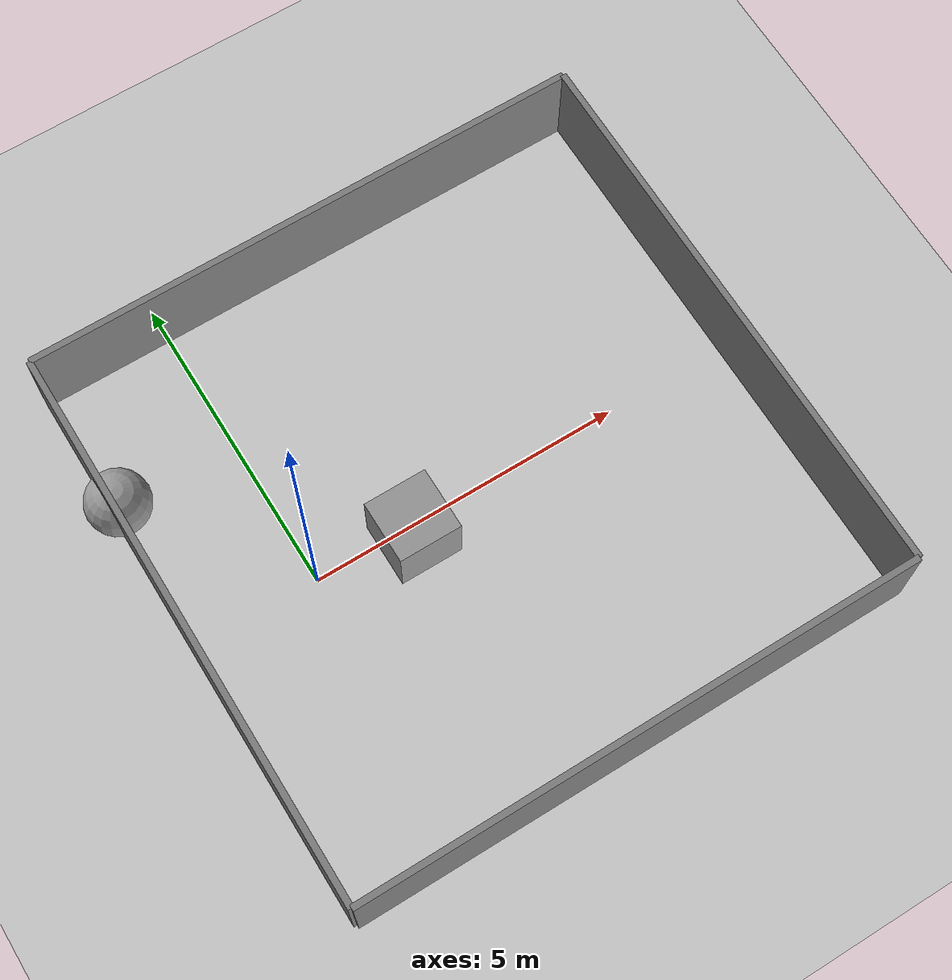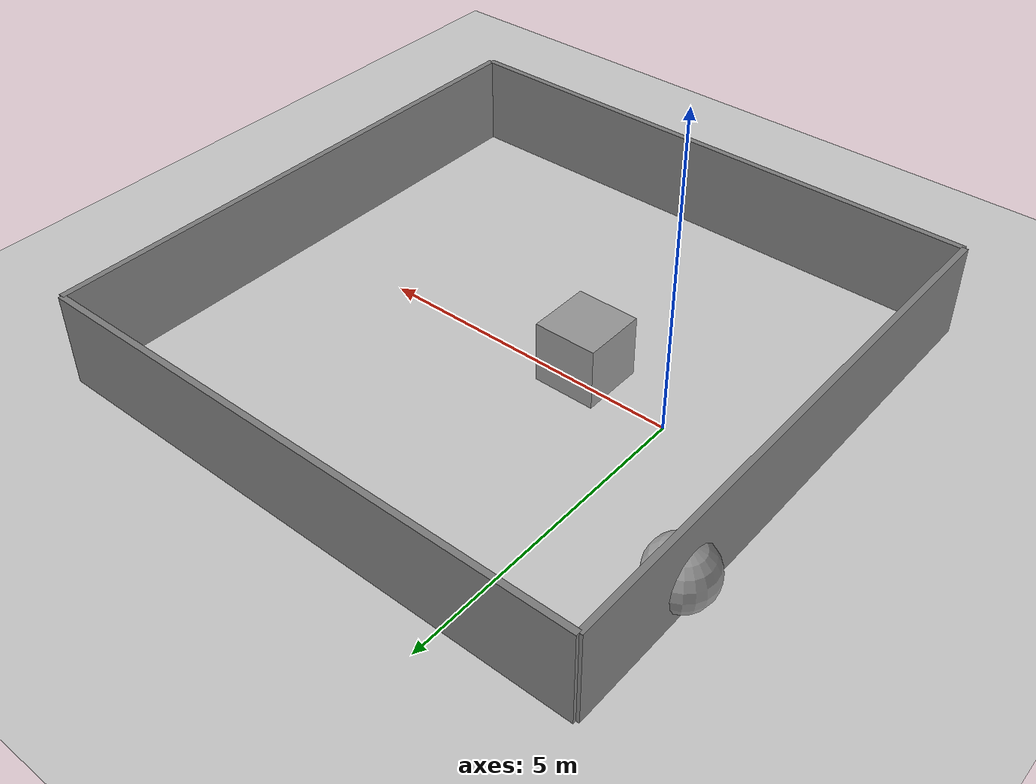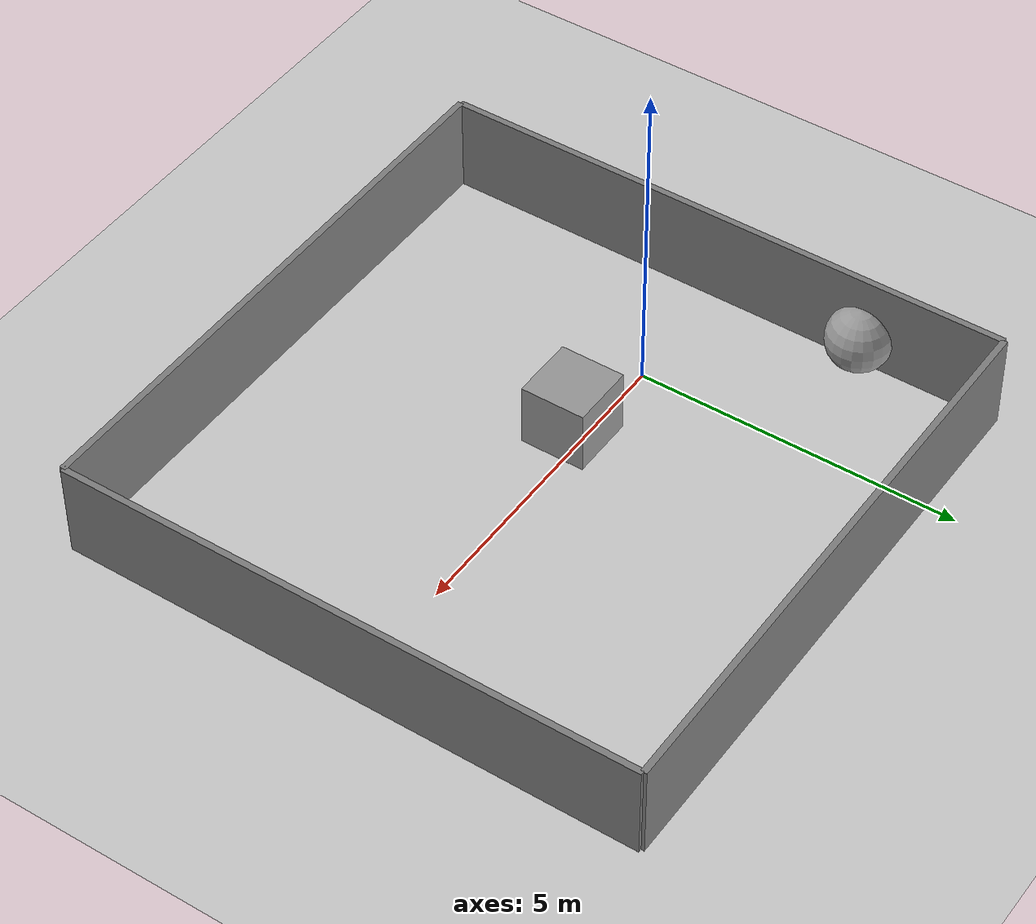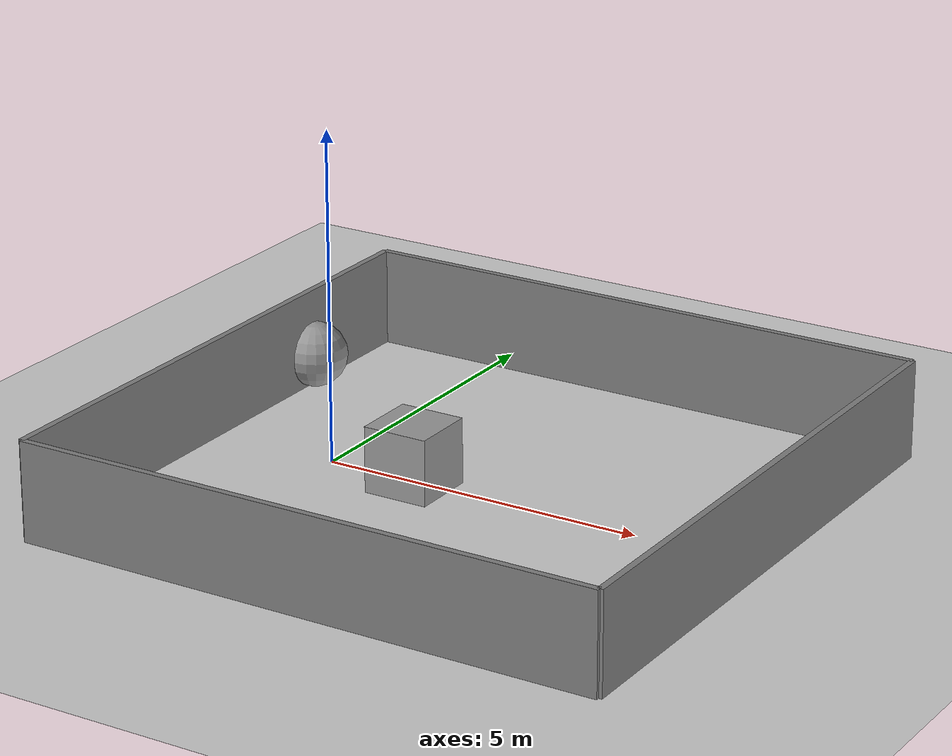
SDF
<sdf version="1.7">
 <world name="my_world">
  <physics name="1ms" type="ignored">
   <max_step_size>0.001</max_step_size>
   <real_time_factor>1.0</real_time_factor>
   <real_time_update_rate>1000</real_time_update_rate>
  </physics>
  <plugin filename="gz-sim-physics-system" name="gz::sim::systems::Physics"/>
  <plugin filename="gz-sim-user-commands-system" name="gz::sim::systems::UserCommands"/>
  <plugin filename="gz-sim-scene-broadcaster-system" name="gz::sim::systems::SceneBroadcaster"/>
  <plugin filename="gz-sim-imu-system" name="gz::sim::systems::Imu"/>
  <plugin filename="gz-sim-sensors-system" name="gz::sim::systems::Sensors">
   <render_engine>ogre2</render_engine>
  </plugin>
  <light name="sun" type="directional">
   <pose>0 0 10 0 -0 0</pose>
   <diffuse>0.8 0.8 0.8 1</diffuse>
   <specular>0.2 0.2 0.2 1</specular>
   <attenuation>
    <range>1000</range>
    <constant>0.9</constant>
    <linear>0.01</linear>
    <quadratic>0.001</quadratic>
   </attenuation>
   <direction>-0.5 0.1 -0.9</direction>
  </light>
  <gravity>0 0 -9.8</gravity>
  <magnetic_field>6e-06 2.3e-05 -4.2e-05</magnetic_field>
  <atmosphere type="adiabatic"/>
  <scene><ambient>0.4 0.4 0.4 1</ambient><background>0.7 0.7 0.7 1</background><shadows>1</shadows></scene>
  <model name="ground_plane">
   <static>1</static>
   <link name="link">
    <collision name="collision">
     <geometry><plane><normal>0 0 1</normal><size>100 100</size></plane></geometry>
     <surface><friction><ode><mu>100</mu><mu2>50</mu2></ode></friction></surface>
    </collision>
    <visual name="visual">
     <cast_shadows>0</cast_shadows>
     <geometry><plane><normal>0 0 1</normal><size>100 100</size></plane></geometry>
     <material>
      <script><uri>file://media/materials/scripts/gazebo.material</uri><name>Gazebo/Grey</name></script>
     </material>
    </visual>
   </link>
  </model>
  <model name="north_wall">
   <static>true</static>
   <pose>2.5 4.5 0.75 0 0 0</pose>
   <link name="link">
    <collision name="collision"><geometry><box><size>9 0.1 1.5</size></box></geometry></collision>
    <visual name="visual">
     <geometry><box><size>9 0.1 1.5</size></box></geometry>
     <material><ambient>0.5 0.5 0.5 1</ambient><diffuse>0.5 0.5 0.5 1</diffuse></material>
    </visual>
   </link>
  </model>
  <model name="south_wall">
   <static>true</static>
   <pose>2.5 -4.5 0.75 0 0 0</pose>
   <link name="link">
    <collision name="collision"><geometry><box><size>9 0.1 1.5</size></box></geometry></collision>
    <visual name="visual">
     <geometry><box><size>9 0.1 1.5</size></box></geometry>
     <material><ambient>0.5 0.5 0.5 1</ambient><diffuse>0.5 0.5 0.5 1</diffuse></material>
    </visual>
   </link>
  </model>
  <model name="east_wall">
   <static>true</static>
   <pose>7 0 0.75 0 0 0</pose>
   <link name="link">
    <collision name="collision"><geometry><box><size>0.1 9 1.5</size></box></geometry></collision>
    <visual name="visual">
     <geometry><box><size>0.1 9 1.5</size></box></geometry>
     <material><ambient>0.5 0.5 0.5 1</ambient><diffuse>0.5 0.5 0.5 1</diffuse></material>
    </visual>
   </link>
  </model>
  <model name="west_wall">
   <static>true</static>
   <pose>-2 0 0.75 0 0 0</pose>
   <link name="link">
    <collision name="collision"><geometry><box><size>0.1 9 1.5</size></box></geometry></collision>
    <visual name="visual">
     <geometry><box><size>0.1 9 1.5</size></box></geometry>
     <material><ambient>0.5 0.5 0.5 1</ambient><diffuse>0.5 0.5 0.5 1</diffuse></material>
    </visual>
   </link>
  </model>
  <model name="unit_box">
   <pose>1.51271 -0.181418 0.5 0 0 0</pose>
   <link name="link">
    <inertial>
     <mass>1</mass>
     <inertia>
      <ixx>0.166667</ixx>
      <ixy>0</ixy>
      <ixz>0</ixz>
      <iyy>0.166667</iyy>
      <iyz>0</iyz>
      <izz>0.166667</izz>
     </inertia>
    </inertial>
    <collision name="collision"><geometry><box><size>1 1 1</size></box></geometry></collision>
    <visual name="visual">
     <geometry><box><size>1 1 1</size></box></geometry>
     <material>
      <script><name>Gazebo/Grey</name><uri>file://media/materials/scripts/gazebo.material</uri></script>
     </material>
    </visual>
   </link>
  </model>
  <model name="unit_sphere">
   <pose>-1.89496 2.36764 0.5 0 0 0</pose>
   <link name="link">
    <inertial>
     <mass>1</mass>
     <inertia><ixx>0.1</ixx><ixy>0</ixy><ixz>0</ixz><iyy>0.1</iyy><iyz>0</iyz><izz>0.1</izz></inertia>
    </inertial>
    <collision name="collision"><geometry><sphere><radius>0.5</radius></sphere></geometry></collision>
    <visual name="visual">
     <geometry><sphere><radius>0.5</radius></sphere></geometry>
     <material>
      <script><name>Gazebo/Grey</name><uri>file://media/materials/scripts/gazebo.material</uri></script>
     </material>
    </visual>
   </link>
  </model>
 </world>
</sdf>
